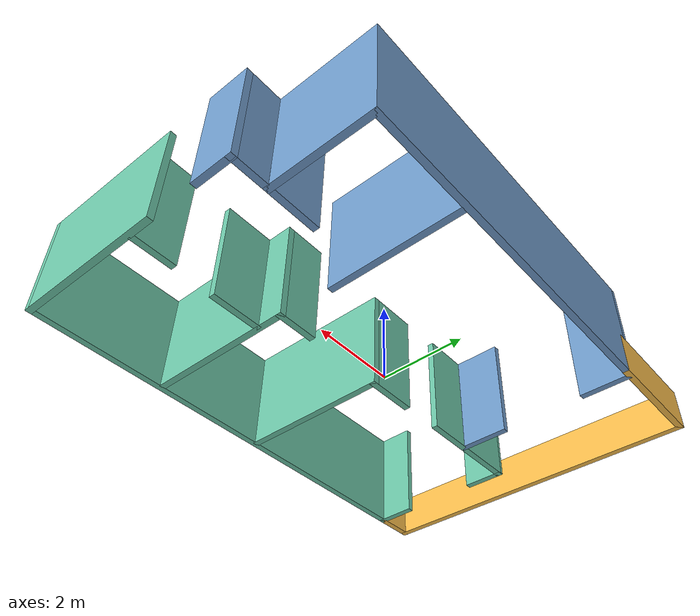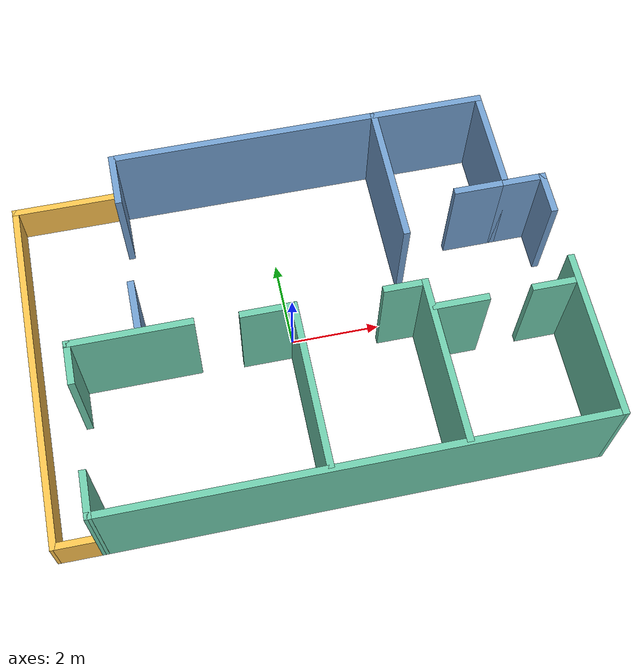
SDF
<?xml version='1.0'?>
<sdf version='1.7'>
  <model name='Building'>
    <pose>0.128567 0.040955 0 0 -0 0</pose>
    <link name='Wall_0'>
      <collision name='Wall_0_Collision'>
        <geometry>
          <box>
            <size>8.5 0.15 2.5</size>
          </box>
        </geometry>
        <pose>0 0 1.25 0 -0 0</pose>
      </collision>
      <visual name='Wall_0_Visual'>
        <pose>0 0 1.25 0 -0 0</pose>
        <geometry>
          <box>
            <size>8.5 0.15 2.5</size>
          </box>
        </geometry>
        <material>
          <script>
            <uri>file://media/materials/scripts/gazebo.material</uri>
            <name>Gazebo/Grey</name>
          </script>
          <ambient>0.447059 0.623529 0.811765 1</ambient>
        </material>
        <meta>
          <layer>0</layer>
        </meta>
      </visual>
      <pose>0.870433 4.05105 0 0 -0 0</pose>
    </link>
    <link name='Wall_1'>
      <collision name='Wall_1_Collision'>
        <geometry>
          <box>
            <size>2.5 0.15 2.5</size>
          </box>
        </geometry>
        <pose>0 0 1.25 0 -0 0</pose>
      </collision>
      <visual name='Wall_1_Visual'>
        <pose>0 0 1.25 0 -0 0</pose>
        <geometry>
          <box>
            <size>2.5 0.15 2.5</size>
          </box>
        </geometry>
        <material>
          <script>
            <uri>file://media/materials/scripts/gazebo.material</uri>
            <name>Gazebo/Grey</name>
          </script>
          <ambient>0.447059 0.623529 0.811765 1</ambient>
        </material>
        <meta>
          <layer>0</layer>
        </meta>
      </visual>
      <pose>5.04543 2.87604 0 0 -0 -1.5708</pose>
    </link>
    <link name='Wall_14'>
      <collision name='Wall_14_Collision'>
        <geometry>
          <box>
            <size>3.75 0.15 2.5</size>
          </box>
        </geometry>
        <pose>0 0 1.25 0 -0 0</pose>
      </collision>
      <visual name='Wall_14_Visual'>
        <pose>0 0 1.25 0 -0 0</pose>
        <geometry>
          <box>
            <size>3.75 0.15 2.5</size>
          </box>
        </geometry>
        <material>
          <script>
            <uri>file://media/materials/scripts/gazebo.material</uri>
            <name>Gazebo/Grey</name>
          </script>
          <ambient>0.435294 0.796078 0.67451 1</ambient>
        </material>
        <meta>
          <layer>0</layer>
        </meta>
      </visual>
      <pose>5.90427 -2.22379 0 0 -0 -1.5708</pose>
    </link>
    <link name='Wall_15'>
      <collision name='Wall_15_Collision'>
        <geometry>
          <box>
            <size>11.0131 0.15 2.5</size>
          </box>
        </geometry>
        <pose>0 0 1.25 0 -0 0</pose>
      </collision>
      <visual name='Wall_15_Visual'>
        <pose>0 0 1.25 0 -0 0</pose>
        <geometry>
          <box>
            <size>11.0131 0.15 2.5</size>
          </box>
        </geometry>
        <material>
          <script>
            <uri>file://media/materials/scripts/gazebo.material</uri>
            <name>Gazebo/Grey</name>
          </script>
          <ambient>0.435294 0.796078 0.67451 1</ambient>
        </material>
        <meta>
          <layer>0</layer>
        </meta>
      </visual>
      <pose>0.472849 -4.03687 0 0 -0 -3.13918</pose>
    </link>
    <link name='Wall_16'>
      <collision name='Wall_16_Collision'>
        <geometry>
          <box>
            <size>1.02626 0.15 2.5</size>
          </box>
        </geometry>
        <pose>0 0 1.25 0 -0 0</pose>
      </collision>
      <visual name='Wall_16_Visual'>
        <pose>0 0 1.25 0 -0 0</pose>
        <geometry>
          <box>
            <size>1.02626 0.15 2.5</size>
          </box>
        </geometry>
        <material>
          <script>
            <uri>file://media/materials/scripts/gazebo.material</uri>
            <name>Gazebo/Grey</name>
          </script>
          <ambient>0.435294 0.796078 0.67451 1</ambient>
        </material>
        <meta>
          <layer>0</layer>
        </meta>
      </visual>
      <pose>-4.95215 -3.61187 0 0 -0 1.55615</pose>
    </link>
    <link name='Wall_18'>
      <collision name='Wall_18_Collision'>
        <geometry>
          <box>
            <size>0.992854 0.15 2.5</size>
          </box>
        </geometry>
        <pose>0 0 1.25 0 -0 0</pose>
      </collision>
      <visual name='Wall_18_Visual'>
        <pose>0 0 1.25 0 -0 0</pose>
        <geometry>
          <box>
            <size>0.992854 0.15 2.5</size>
          </box>
        </geometry>
        <material>
          <script>
            <uri>file://media/materials/scripts/gazebo.material</uri>
            <name>Gazebo/Grey</name>
          </script>
          <ambient>0.435294 0.796078 0.67451 1</ambient>
        </material>
        <meta>
          <layer>0</layer>
        </meta>
      </visual>
      <pose>-4.94342 -0.738786 0 0 -0 1.56763</pose>
    </link>
    <link name='Wall_19'>
      <collision name='Wall_19_Collision'>
        <geometry>
          <box>
            <size>2.74734 0.15 2.5</size>
          </box>
        </geometry>
        <pose>0 0 1.25 0 -0 0</pose>
      </collision>
      <visual name='Wall_19_Visual'>
        <pose>0 0 1.25 0 -0 0</pose>
        <geometry>
          <box>
            <size>2.74734 0.15 2.5</size>
          </box>
        </geometry>
        <material>
          <script>
            <uri>file://media/materials/scripts/gazebo.material</uri>
            <name>Gazebo/Grey</name>
          </script>
          <ambient>0.435294 0.796078 0.67451 1</ambient>
        </material>
        <meta>
          <layer>0</layer>
        </meta>
      </visual>
      <pose>-3.64342 -0.313786 0 0 -0 0.002753</pose>
    </link>
    <link name='Wall_2'>
      <collision name='Wall_2_Collision'>
        <geometry>
          <box>
            <size>1 0.15 2.5</size>
          </box>
        </geometry>
        <pose>0 0 1.25 0 -0 0</pose>
      </collision>
      <visual name='Wall_2_Visual'>
        <pose>0 0 1.25 0 -0 0</pose>
        <geometry>
          <box>
            <size>1 0.15 2.5</size>
          </box>
        </geometry>
        <material>
          <script>
            <uri>file://media/materials/scripts/gazebo.material</uri>
            <name>Gazebo/Grey</name>
          </script>
          <ambient>0.447059 0.623529 0.811765 1</ambient>
        </material>
        <meta>
          <layer>0</layer>
        </meta>
      </visual>
      <pose>5.47043 1.70104 0 0 -0 0</pose>
    </link>
    <link name='Wall_21'>
      <collision name='Wall_21_Collision'>
        <geometry>
          <box>
            <size>1.25 0.15 2.5</size>
          </box>
        </geometry>
        <pose>0 0 1.25 0 -0 0</pose>
      </collision>
      <visual name='Wall_21_Visual'>
        <pose>0 0 1.25 0 -0 0</pose>
        <geometry>
          <box>
            <size>1.25 0.15 2.5</size>
          </box>
        </geometry>
        <material>
          <script>
            <uri>file://media/materials/scripts/gazebo.material</uri>
            <name>Gazebo/Grey</name>
          </script>
          <ambient>0.435294 0.796078 0.67451 1</ambient>
        </material>
        <meta>
          <layer>0</layer>
        </meta>
      </visual>
      <pose>-0.699511 -0.358041 0 0 -0 0</pose>
    </link>
    <link name='Wall_22'>
      <collision name='Wall_22_Collision'>
        <geometry>
          <box>
            <size>3.75 0.15 2.5</size>
          </box>
        </geometry>
        <pose>0 0 1.25 0 -0 0</pose>
      </collision>
      <visual name='Wall_22_Visual'>
        <pose>0 0 1.25 0 -0 0</pose>
        <geometry>
          <box>
            <size>3.75 0.15 2.5</size>
          </box>
        </geometry>
        <material>
          <script>
            <uri>file://media/materials/scripts/gazebo.material</uri>
            <name>Gazebo/Grey</name>
          </script>
          <ambient>0.435294 0.796078 0.67451 1</ambient>
        </material>
        <meta>
          <layer>0</layer>
        </meta>
      </visual>
      <pose>-0.149511 -2.15804 0 0 -0 -1.5708</pose>
    </link>
    <link name='Wall_24'>
      <collision name='Wall_24_Collision'>
        <geometry>
          <box>
            <size>1 0.15 2.5</size>
          </box>
        </geometry>
        <pose>0 0 1.25 0 -0 0</pose>
      </collision>
      <visual name='Wall_24_Visual'>
        <pose>0 0 1.25 0 -0 0</pose>
        <geometry>
          <box>
            <size>1 0.15 2.5</size>
          </box>
        </geometry>
        <material>
          <script>
            <uri>file://media/materials/scripts/gazebo.material</uri>
            <name>Gazebo/Grey</name>
          </script>
          <ambient>0.435294 0.796078 0.67451 1</ambient>
        </material>
        <meta>
          <layer>0</layer>
        </meta>
      </visual>
      <pose>2.26581 -0.371191 0 0 -0 0</pose>
    </link>
    <link name='Wall_25'>
      <collision name='Wall_25_Collision'>
        <geometry>
          <box>
            <size>3.75 0.15 2.5</size>
          </box>
        </geometry>
        <pose>0 0 1.25 0 -0 0</pose>
      </collision>
      <visual name='Wall_25_Visual'>
        <pose>0 0 1.25 0 -0 0</pose>
        <geometry>
          <box>
            <size>3.75 0.15 2.5</size>
          </box>
        </geometry>
        <material>
          <script>
            <uri>file://media/materials/scripts/gazebo.material</uri>
            <name>Gazebo/Grey</name>
          </script>
          <ambient>0.435294 0.796078 0.67451 1</ambient>
        </material>
        <meta>
          <layer>0</layer>
        </meta>
      </visual>
      <pose>2.69082 -2.17119 0 0 -0 -1.5708</pose>
    </link>
    <link name='Wall_27'>
      <collision name='Wall_27_Collision'>
        <geometry>
          <box>
            <size>1.25 0.15 2.5</size>
          </box>
        </geometry>
        <pose>0 0 1.25 0 -0 0</pose>
      </collision>
      <visual name='Wall_27_Visual'>
        <pose>0 0 1.25 0 -0 0</pose>
        <geometry>
          <box>
            <size>1.25 0.15 2.5</size>
          </box>
        </geometry>
        <material>
          <script>
            <uri>file://media/materials/scripts/gazebo.material</uri>
            <name>Gazebo/Grey</name>
          </script>
          <ambient>0.435294 0.796078 0.67451 1</ambient>
        </material>
        <meta>
          <layer>0</layer>
        </meta>
      </visual>
      <pose>3.31134 -0.976106 0 0 -0 0</pose>
    </link>
    <link name='Wall_29'>
      <collision name='Wall_29_Collision'>
        <geometry>
          <box>
            <size>1 0.15 2.5</size>
          </box>
        </geometry>
        <pose>0 0 1.25 0 -0 0</pose>
      </collision>
      <visual name='Wall_29_Visual'>
        <pose>0 0 1.25 0 -0 0</pose>
        <geometry>
          <box>
            <size>1 0.15 2.5</size>
          </box>
        </geometry>
        <material>
          <script>
            <uri>file://media/materials/scripts/gazebo.material</uri>
            <name>Gazebo/Grey</name>
          </script>
          <ambient>0.435294 0.796078 0.67451 1</ambient>
        </material>
        <meta>
          <layer>0</layer>
        </meta>
      </visual>
      <pose>5.36929 -0.949805 0 0 -0 0</pose>
    </link>
    <link name='Wall_3'>
      <collision name='Wall_3_Collision'>
        <geometry>
          <box>
            <size>1 0.15 2.5</size>
          </box>
        </geometry>
        <pose>0 0 1.25 0 -0 0</pose>
      </collision>
      <visual name='Wall_3_Visual'>
        <pose>0 0 1.25 0 -0 0</pose>
        <geometry>
          <box>
            <size>1 0.15 2.5</size>
          </box>
        </geometry>
        <material>
          <script>
            <uri>file://media/materials/scripts/gazebo.material</uri>
            <name>Gazebo/Grey</name>
          </script>
          <ambient>0.447059 0.623529 0.811765 1</ambient>
        </material>
        <meta>
          <layer>0</layer>
        </meta>
      </visual>
      <pose>5.89543 1.27605 0 0 -0 -1.5708</pose>
    </link>
    <link name='Wall_33'>
      <collision name='Wall_33_Collision'>
        <geometry>
          <box>
            <size>3.25 0.15 2.5</size>
          </box>
        </geometry>
        <pose>0 0 1.25 0 -0 0</pose>
      </collision>
      <visual name='Wall_33_Visual'>
        <pose>0 0 1.25 0 -0 0</pose>
        <geometry>
          <box>
            <size>3.25 0.15 2.5</size>
          </box>
        </geometry>
        <material>
          <script>
            <uri>file://media/materials/scripts/gazebo.material</uri>
            <name>Gazebo/Grey</name>
          </script>
          <ambient>0.447059 0.623529 0.811765 1</ambient>
        </material>
        <meta>
          <layer>0</layer>
        </meta>
      </visual>
      <pose>2.59038 2.48417 0 0 -0 -1.5708</pose>
    </link>
    <link name='Wall_36'>
      <collision name='Wall_36_Collision'>
        <geometry>
          <box>
            <size>1.25 0.15 2.5</size>
          </box>
        </geometry>
        <pose>0 0 1.25 0 -0 0</pose>
      </collision>
      <visual name='Wall_36_Visual'>
        <pose>0 0 1.25 0 -0 0</pose>
        <geometry>
          <box>
            <size>1.25 0.15 2.5</size>
          </box>
        </geometry>
        <material>
          <script>
            <uri>file://media/materials/scripts/gazebo.material</uri>
            <name>Gazebo/Grey</name>
          </script>
          <ambient>0.447059 0.623529 0.811765 1</ambient>
        </material>
        <meta>
          <layer>0</layer>
        </meta>
      </visual>
      <pose>4.49558 1.70105 0 0 -0 3.14158</pose>
    </link>
    <link name='Wall_38'>
      <collision name='Wall_38_Collision'>
        <geometry>
          <box>
            <size>1.25 0.15 2.5</size>
          </box>
        </geometry>
        <pose>0 0 1.25 0 -0 0</pose>
      </collision>
      <visual name='Wall_38_Visual'>
        <pose>0 0 1.25 0 -0 0</pose>
        <geometry>
          <box>
            <size>1.25 0.15 2.5</size>
          </box>
        </geometry>
        <material>
          <script>
            <uri>file://media/materials/scripts/gazebo.material</uri>
            <name>Gazebo/Grey</name>
          </script>
          <ambient>0.447059 0.623529 0.811765 1</ambient>
        </material>
        <meta>
          <layer>0</layer>
        </meta>
      </visual>
      <pose>-3.43247 3.49732 0 0 -0 -1.5708</pose>
    </link>
    <link name='Wall_40'>
      <collision name='Wall_40_Collision'>
        <geometry>
          <box>
            <size>1.25 0.15 2.5</size>
          </box>
        </geometry>
        <pose>0 0 1.25 0 -0 0</pose>
      </collision>
      <visual name='Wall_40_Visual'>
        <pose>0 0 1.25 0 -0 0</pose>
        <geometry>
          <box>
            <size>1.25 0.15 2.5</size>
          </box>
        </geometry>
        <material>
          <script>
            <uri>file://media/materials/scripts/gazebo.material</uri>
            <name>Gazebo/Grey</name>
          </script>
          <ambient>0.447059 0.623529 0.811765 1</ambient>
        </material>
        <meta>
          <layer>0</layer>
        </meta>
      </visual>
      <pose>-3.44562 0.262338 0 0 -0 -1.5708</pose>
    </link>
    <link name='Wall_42'>
      <collision name='Wall_42_Collision'>
        <geometry>
          <box>
            <size>2.75 0.15 1</size>
          </box>
        </geometry>
        <pose>0 0 0.5 0 -0 0</pose>
      </collision>
      <visual name='Wall_42_Visual'>
        <pose>0 0 0.5 0 -0 0</pose>
        <geometry>
          <box>
            <size>2.75 0.15 1</size>
          </box>
        </geometry>
        <material>
          <script>
            <uri>file://media/materials/scripts/gazebo.material</uri>
            <name>Gazebo/Grey</name>
          </script>
          <ambient>1 0.764706 0.305882 1</ambient>
        </material>
        <meta>
          <layer>0</layer>
        </meta>
      </visual>
      <pose>-4.60457 4.05105 0 0 -0 -3.14159</pose>
    </link>
    <link name='Wall_43'>
      <collision name='Wall_43_Collision'>
        <geometry>
          <box>
            <size>8.25 0.15 1</size>
          </box>
        </geometry>
        <pose>0 0 0.5 0 -0 0</pose>
      </collision>
      <visual name='Wall_43_Visual'>
        <pose>0 0 0.5 0 -0 0</pose>
        <geometry>
          <box>
            <size>8.25 0.15 1</size>
          </box>
        </geometry>
        <material>
          <script>
            <uri>file://media/materials/scripts/gazebo.material</uri>
            <name>Gazebo/Grey</name>
          </script>
          <ambient>1 0.764706 0.305882 1</ambient>
        </material>
        <meta>
          <layer>0</layer>
        </meta>
      </visual>
      <pose>-5.90457 0.001045 0 0 -0 -1.5708</pose>
    </link>
    <link name='Wall_46'>
      <collision name='Wall_46_Collision'>
        <geometry>
          <box>
            <size>1.09576 0.15 1</size>
          </box>
        </geometry>
        <pose>0 0 0.5 0 -0 0</pose>
      </collision>
      <visual name='Wall_46_Visual'>
        <pose>0 0 0.5 0 -0 0</pose>
        <geometry>
          <box>
            <size>1.09576 0.15 1</size>
          </box>
        </geometry>
        <material>
          <script>
            <uri>file://media/materials/scripts/gazebo.material</uri>
            <name>Gazebo/Grey</name>
          </script>
          <ambient>1 0.764706 0.305882 1</ambient>
        </material>
        <meta>
          <layer>0</layer>
        </meta>
      </visual>
      <pose>-5.43157 -4.04946 0 0 -0 -0.001057</pose>
    </link>
    <static>1</static>
  </model>
</sdf>
